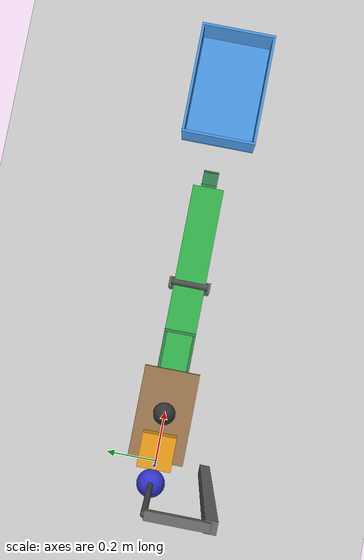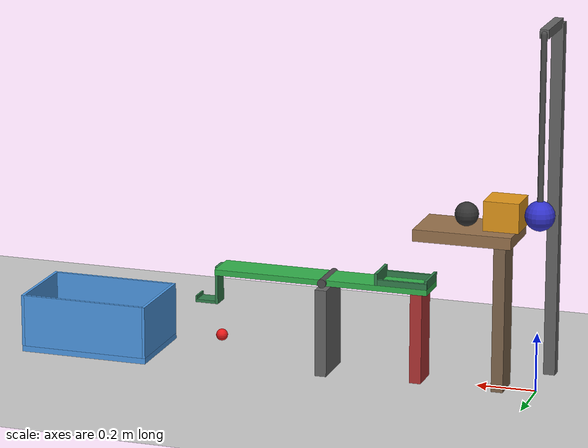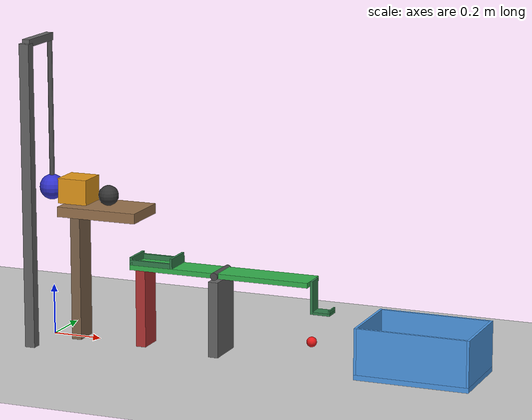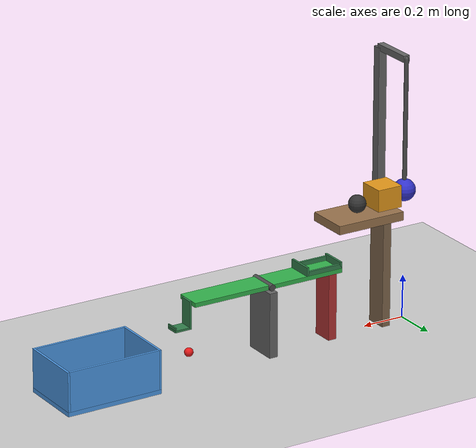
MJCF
<mujoco model="pendulum_cart_seesaw_cup">
  <compiler angle="radian"/>
  <option timestep="0.002" gravity="0 0 -9.81"/>
  <worldbody>
    <light name="sun" pos="0.6 -1 3" dir="0 0.3 -1" directional="true"/>
    <geom name="floor" type="plane" pos="0 0 0" size="3 3 0.1" rgba="0.8 0.8 0.8 1"/>

    <geom name="frame_post" type="box" pos="0 -0.2 0.6" size="0.02 0.02 0.6" contype="0" conaffinity="0" rgba="0.4 0.4 0.4 1"/>
    <geom name="frame_beam" type="box" pos="0 -0.1 1.2" size="0.015 0.1 0.015" contype="0" conaffinity="0" rgba="0.4 0.4 0.4 1"/>
    <geom name="shelf" type="box" pos="0.235 0 0.525" size="0.165 0.1 0.02" rgba="0.6 0.45 0.3 1"/>
    <geom name="shelf_leg" type="box" pos="0.12 0 0.2525" size="0.02 0.05 0.2525" contype="0" conaffinity="0" rgba="0.5 0.4 0.3 1"/>
    <geom name="lower_stop" type="box" pos="0.40 0 0.155" size="0.02 0.05 0.155" rgba="0.7 0.2 0.2 1"/>
    <geom name="seesaw_stand" type="box" pos="0.72 0 0.15" size="0.02 0.08 0.15" contype="0" conaffinity="0" rgba="0.4 0.4 0.4 1"/>

    <body name="pendulum" pos="0 0 1.2">
      <joint name="pendulum_hinge" type="hinge" axis="0 1 0" pos="0 0 0"/>
      <geom name="pendulum_arm" type="capsule" fromto="0 0 0 0 0 -0.55" size="0.01" mass="0.05" contype="0" conaffinity="0" rgba="0.3 0.3 0.3 1"/>
      <geom name="pendulum_bob" type="sphere" pos="0 0 -0.6" size="0.05" mass="1" rgba="0.2 0.2 0.8 1"/>
    </body>

    <body name="cart" pos="0.115 0 0.6">
      <joint name="cart_slide" type="slide" axis="1 0 0" limited="true" range="-0.01 0.10"/>
      <geom name="cart_body" type="box" size="0.06 0.06 0.05" mass="3" rgba="0.9 0.6 0.1 1"/>
    </body>

    <body name="weight" pos="0.245 0 0.585">
      <freejoint name="weight_free"/>
      <geom name="weight_geom" type="sphere" size="0.04" mass="1" rgba="0.2 0.2 0.2 1"/>
    </body>

    <body name="seesaw" pos="0.72 0 0.32">
      <joint name="seesaw_hinge" type="hinge" axis="0 1 0" pos="0 0 0" limited="true" range="-0.1 0.361"/>
      <geom name="seesaw_axle" type="cylinder" pos="0 0 0" size="0.015 0.07" euler="1.5708 0 0" contype="0" conaffinity="0" mass="0.01" rgba="0.3 0.3 0.3 1"/>
      <geom name="seesaw_plank" type="box" pos="0.01 0 0" size="0.37 0.06 0.01" mass="0.2" rgba="0.2 0.7 0.3 1"/>
      <geom name="seesaw_tray_wall" type="box" pos="-0.185 0 0.03" size="0.005 0.06 0.02" mass="0.01" rgba="0.2 0.5 0.3 1"/>
      <geom name="seesaw_end_wall" type="box" pos="-0.355 0 0.025" size="0.005 0.06 0.015" mass="0.005" rgba="0.2 0.5 0.3 1"/>
      <geom name="seesaw_rail_a" type="box" pos="-0.275 0.055 0.02" size="0.085 0.005 0.01" mass="0.005" rgba="0.2 0.5 0.3 1"/>
      <geom name="seesaw_rail_b" type="box" pos="-0.275 -0.055 0.02" size="0.085 0.005 0.01" mass="0.005" rgba="0.2 0.5 0.3 1"/>
      <geom name="seesaw_bracket" type="box" pos="0.385 0 -0.055" size="0.005 0.03 0.065" mass="0.01" rgba="0.2 0.5 0.3 1"/>
      <geom name="seesaw_pad" type="box" pos="0.425 0 -0.115" size="0.035 0.03 0.005" mass="0.01" rgba="0.2 0.5 0.3 1"/>
      <geom name="seesaw_lip" type="box" pos="0.457 0 -0.104" size="0.003 0.03 0.006" mass="0.002" rgba="0.2 0.5 0.3 1"/>
    </body>

    <body name="ball" pos="1.0965 0 0.0832">
      <freejoint name="ball_free"/>
      <geom name="ball_geom" type="sphere" size="0.02" mass="0.02" condim="6" friction="0.8 0.01 0.002" rgba="0.9 0.1 0.1 1"/>
    </body>

    <body name="cup" pos="1.545 0 0">
      <geom name="cup_base" type="box" pos="0 0 0.01" size="0.225 0.15 0.01" rgba="0.3 0.6 0.9 1"/>
      <geom name="cup_wall_near" type="box" pos="-0.22 0 0.11" size="0.005 0.15 0.09" rgba="0.3 0.6 0.9 1"/>
      <geom name="cup_wall_far" type="box" pos="0.22 0 0.11" size="0.005 0.15 0.09" rgba="0.3 0.6 0.9 1"/>
      <geom name="cup_wall_left" type="box" pos="0 0.145 0.11" size="0.215 0.005 0.09" rgba="0.3 0.6 0.9 1"/>
      <geom name="cup_wall_right" type="box" pos="0 -0.145 0.11" size="0.215 0.005 0.09" rgba="0.3 0.6 0.9 1"/>
    </body>
  </worldbody>

  <keyframe>
    <key name="start" qpos="1.5708 0 0.245 0 0.585 1 0 0 0 0.36 1.0965 0 0.0832 1 0 0 0"/>
  </keyframe>
</mujoco>
